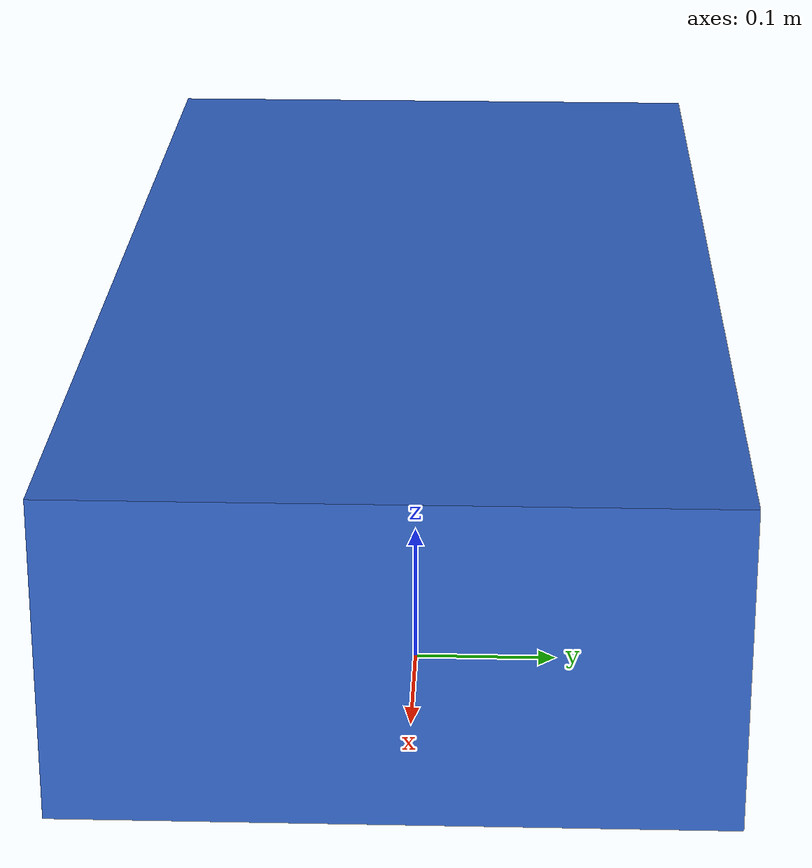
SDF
<?xml version="1.0" ?>
<sdf version="1.6">
  <model name="robot_car">

    <!-- 차량 본체 -->
    <link name="base_link">
      <pose>0 0 0.2 0 0 0</pose>
      <inertial>
        <mass>10.0</mass>
        <inertia>
          <ixx>0.1</ixx><iyy>0.1</iyy><izz>0.1</izz>
          <ixy>0</ixy><ixz>0</ixz><iyz>0</iyz>
        </inertia>
      </inertial>
      <collision name="collision">
        <geometry>
          <box><size>0.8 0.4 0.2</size></box>
        </geometry>
      </collision>
      <visual name="visual">
        <geometry>
          <box><size>0.8 0.4 0.2</size></box>
        </geometry>
        <material>
          <ambient>0.2 0.4 0.8 1</ambient>
          <diffuse>0.2 0.4 0.8 1</diffuse>
        </material>
      </visual>
    </link>

    <!-- 카메라 센서 -->
    <link name="camera_link">
      <pose>0.4 0 0.35 0 0.2 0</pose>
      <sensor name="camera" type="camera">
        <always_on>true</always_on>
        <update_rate>30</update_rate>
        <camera>
          <horizontal_fov>1.047</horizontal_fov>
          <image>
            <width>640</width>
            <height>480</height>
            <format>R8G8B8</format>
          </image>
          <clip>
            <near>0.1</near>
            <far>100</far>
          </clip>
        </camera>
        <plugin name="camera_plugin"
                filename="libgazebo_ros_camera.so">
          <ros>
            <remapping>~/image_raw:=/camera/image_raw</remapping>
          </ros>
        </plugin>
      </sensor>
    </link>

    <!-- 카메라 조인트 -->
    <joint name="camera_joint" type="fixed">
      <parent>base_link</parent>
      <child>camera_link</child>
    </joint>

    <!-- 차량 이동 플러그인 -->
    <plugin name="diff_drive"
            filename="libgazebo_ros_diff_drive.so">
      <ros>
        <remapping>cmd_vel:=/cmd_vel</remapping>
      </ros>
      <left_joint>left_wheel_joint</left_joint>
      <right_joint>right_wheel_joint</right_joint>
      <wheel_separation>0.4</wheel_separation>
      <wheel_diameter>0.1</wheel_diameter>
      <max_wheel_torque>20</max_wheel_torque>
      <max_wheel_acceleration>1.0</max_wheel_acceleration>
    </plugin>

  </model>
</sdf>
